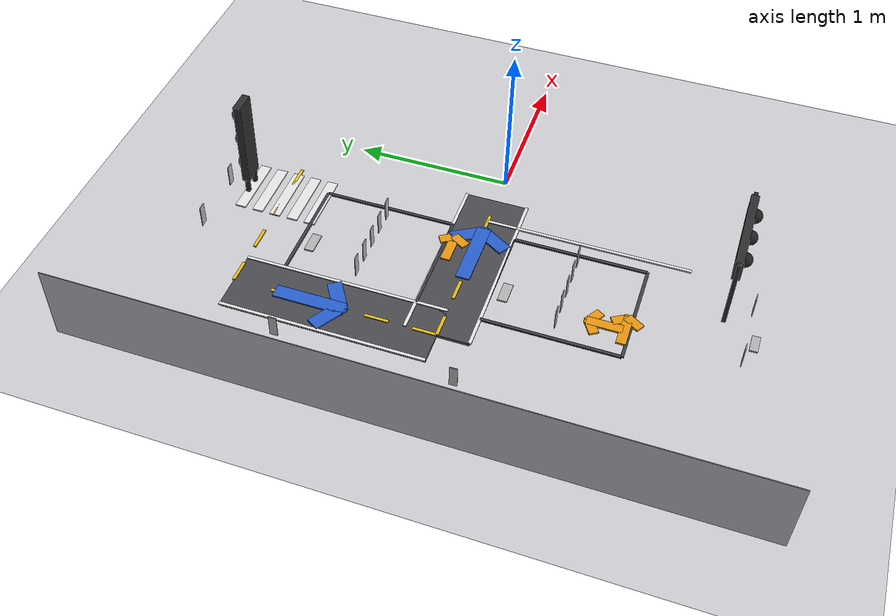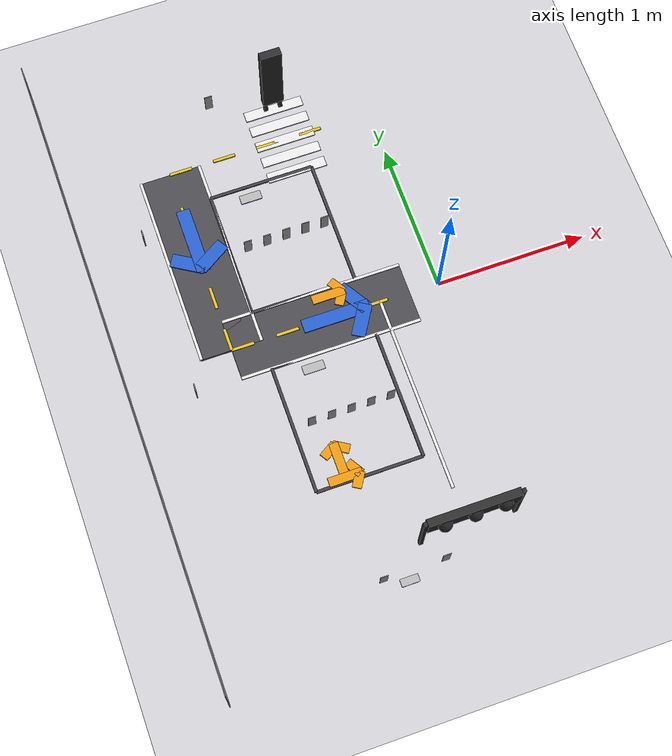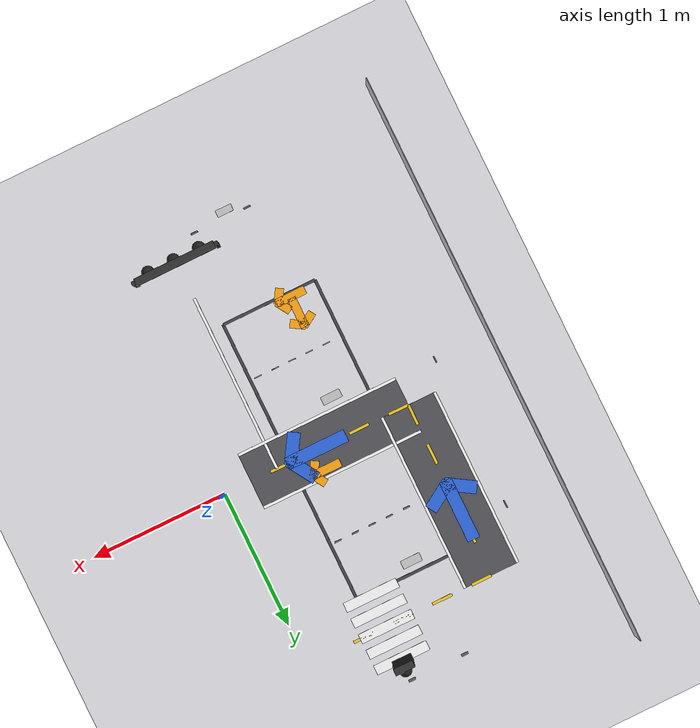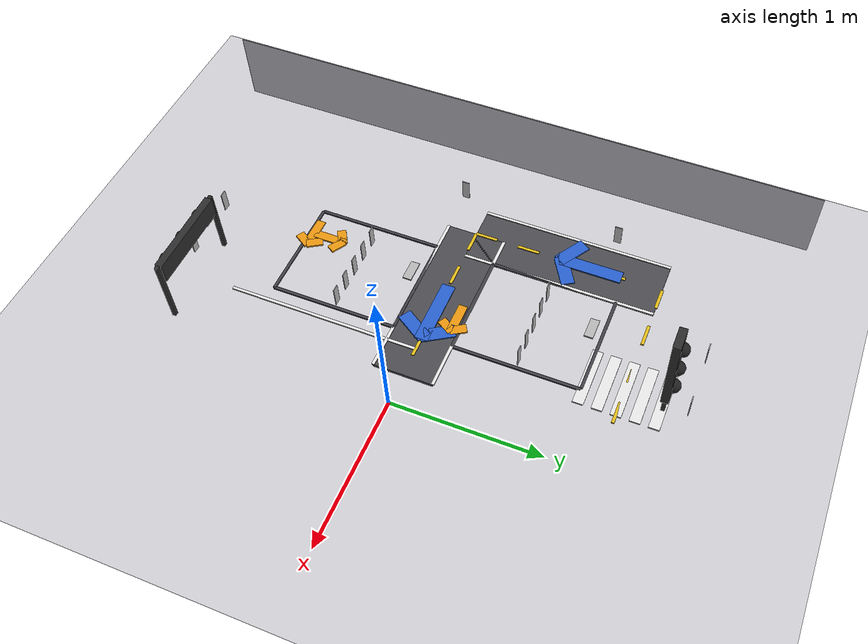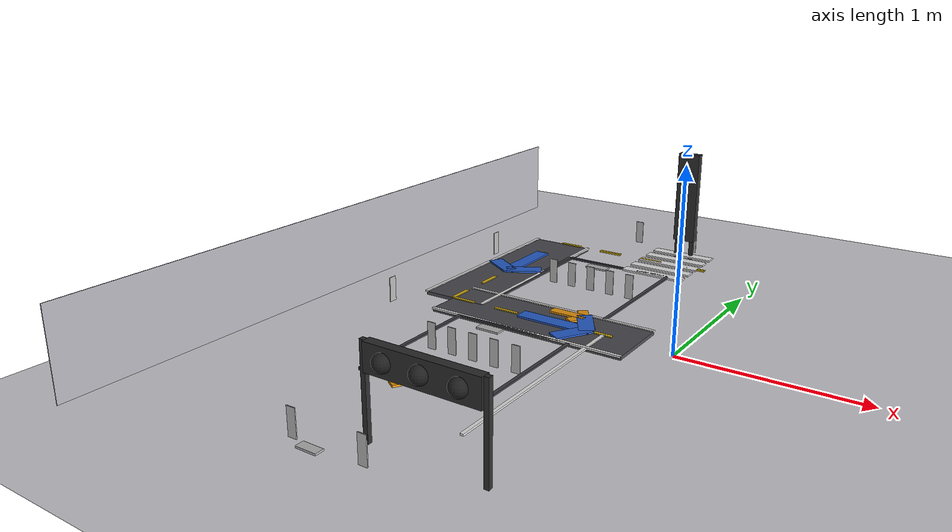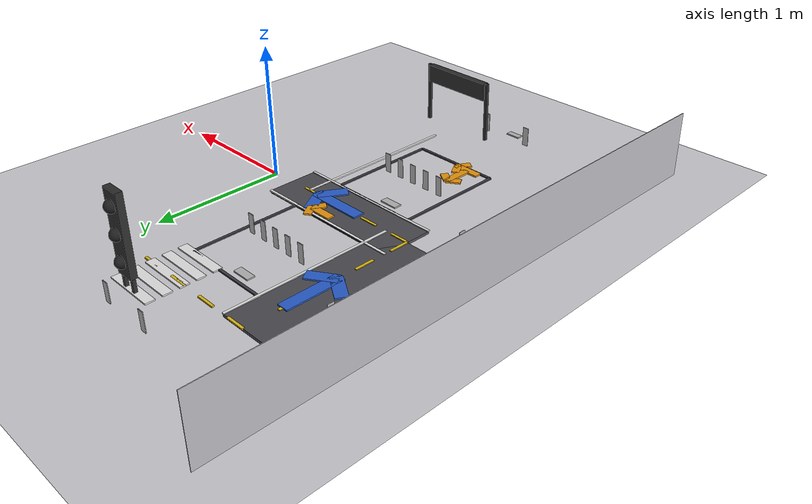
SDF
<sdf version="1.8">
 <world name="smart_community">
  <model name="ground_plane">
   <static>true</static>
   <link name="link">
    <collision name="collision">
     <geometry><plane><normal>0 0 1</normal><size>6 6</size></plane></geometry>
     <surface><friction><ode><mu>1.0</mu><mu2>1.0</mu2></ode></friction></surface>
    </collision>
    <visual name="visual">
     <geometry><plane><normal>0 0 1</normal><size>6 6</size></plane></geometry>
     <material>
      <ambient>0.72 0.72 0.74 1</ambient>
      <diffuse>0.82 0.82 0.84 1</diffuse>
      <specular>0.05 0.05 0.05 1</specular>
     </material>
    </visual>
   </link>
  </model>
  <model name="wall_w">
   <static>true</static>
   <pose>-2.1025 0 0.25 0 0 0.0</pose>
   <link name="link">
    <collision name="c"><geometry><box><size>0.005 4.205 0.5</size></box></geometry></collision>
    <visual name="v">
     <geometry><box><size>0.005 4.205 0.5</size></box></geometry>
     <material><ambient>0.55 0.55 0.58 1</ambient><diffuse>0.72 0.72 0.75 1</diffuse></material>
    </visual>
   </link>
  </model>
  <model name="road_top_dash_0">
   <static>true</static>
   <pose>-1.325 1.3 0.021 0 0 0.0</pose>
   <link name="link">
    <visual name="visual">
     <geometry><box><size>0.15 0.02 0.01</size></box></geometry>
     <material><ambient>0.81 0.675 0.09000000000000001 1</ambient><diffuse>0.9 0.75 0.1 1</diffuse></material>
    </visual>
   </link>
  </model>
  <model name="road_top_dash_1">
   <static>true</static>
   <pose>-1.025 1.3 0.021 0 0 0.0</pose>
   <link name="link">
    <visual name="visual">
     <geometry><box><size>0.15 0.02 0.01</size></box></geometry>
     <material><ambient>0.81 0.675 0.09000000000000001 1</ambient><diffuse>0.9 0.75 0.1 1</diffuse></material>
    </visual>
   </link>
  </model>
  <model name="road_top_dash_2">
   <static>true</static>
   <pose>-0.7249999999999999 1.3 0.021 0 0 0.0</pose>
   <link name="link">
    <visual name="visual">
     <geometry><box><size>0.15 0.02 0.01</size></box></geometry>
     <material><ambient>0.81 0.675 0.09000000000000001 1</ambient><diffuse>0.9 0.75 0.1 1</diffuse></material>
    </visual>
   </link>
  </model>
  <model name="road_top_dash_3">
   <static>true</static>
   <pose>-0.4249999999999998 1.3 0.021 0 0 0.0</pose>
   <link name="link">
    <visual name="visual">
     <geometry><box><size>0.15 0.02 0.01</size></box></geometry>
     <material><ambient>0.81 0.675 0.09000000000000001 1</ambient><diffuse>0.9 0.75 0.1 1</diffuse></material>
    </visual>
   </link>
  </model>
  <model name="road_left">
   <static>true</static>
   <pose>-1.4 0.65 0.01 0 0 0.0</pose>
   <link name="link">
    <visual name="v">
     <geometry><box><size>0.4 1.3 0.02</size></box></geometry>
     <material><ambient>0.3 0.3 0.32 1</ambient><diffuse>0.3 0.3 0.32 1</diffuse></material>
    </visual>
   </link>
  </model>
  <model name="road_left_edge_e">
   <static>true</static>
   <pose>-1.2 0.65 0.021 0 0 0.0</pose>
   <link name="link">
    <visual name="visual">
     <geometry><box><size>0.02 1.3 0.01</size></box></geometry>
     <material>
      <ambient>0.8280000000000001 0.8280000000000001 0.8280000000000001 1</ambient>
      <diffuse>0.92 0.92 0.92 1</diffuse>
     </material>
    </visual>
   </link>
  </model>
  <model name="road_left_edge_w">
   <static>true</static>
   <pose>-1.5999999999999999 0.65 0.021 0 0 0.0</pose>
   <link name="link">
    <visual name="visual">
     <geometry><box><size>0.02 1.3 0.01</size></box></geometry>
     <material>
      <ambient>0.8280000000000001 0.8280000000000001 0.8280000000000001 1</ambient>
      <diffuse>0.92 0.92 0.92 1</diffuse>
     </material>
    </visual>
   </link>
  </model>
  <model name="road_left_dash_0">
   <static>true</static>
   <pose>-1.4 0.075 0.021 0 0 0.0</pose>
   <link name="link">
    <visual name="visual">
     <geometry><box><size>0.02 0.15 0.01</size></box></geometry>
     <material><ambient>0.81 0.675 0.09000000000000001 1</ambient><diffuse>0.9 0.75 0.1 1</diffuse></material>
    </visual>
   </link>
  </model>
  <model name="road_left_dash_1">
   <static>true</static>
   <pose>-1.4 0.375 0.021 0 0 0.0</pose>
   <link name="link">
    <visual name="visual">
     <geometry><box><size>0.02 0.15 0.01</size></box></geometry>
     <material><ambient>0.81 0.675 0.09000000000000001 1</ambient><diffuse>0.9 0.75 0.1 1</diffuse></material>
    </visual>
   </link>
  </model>
  <model name="road_left_dash_2">
   <static>true</static>
   <pose>-1.4 0.6749999999999999 0.021 0 0 0.0</pose>
   <link name="link">
    <visual name="visual">
     <geometry><box><size>0.02 0.15 0.01</size></box></geometry>
     <material><ambient>0.81 0.675 0.09000000000000001 1</ambient><diffuse>0.9 0.75 0.1 1</diffuse></material>
    </visual>
   </link>
  </model>
  <model name="road_left_dash_3">
   <static>true</static>
   <pose>-1.4 0.9749999999999999 0.021 0 0 0.0</pose>
   <link name="link">
    <visual name="visual">
     <geometry><box><size>0.02 0.15 0.01</size></box></geometry>
     <material><ambient>0.81 0.675 0.09000000000000001 1</ambient><diffuse>0.9 0.75 0.1 1</diffuse></material>
    </visual>
   </link>
  </model>
  <model name="road_mid">
   <static>true</static>
   <pose>-0.7999999999999999 0.0 0.01 0 0 0.0</pose>
   <link name="link">
    <visual name="v">
     <geometry><box><size>1.2 0.4 0.02</size></box></geometry>
     <material><ambient>0.3 0.3 0.32 1</ambient><diffuse>0.3 0.3 0.32 1</diffuse></material>
    </visual>
   </link>
  </model>
  <model name="road_mid_edge_n">
   <static>true</static>
   <pose>-0.7999999999999999 0.2 0.021 0 0 0.0</pose>
   <link name="link">
    <visual name="visual">
     <geometry><box><size>1.2 0.02 0.01</size></box></geometry>
     <material>
      <ambient>0.8280000000000001 0.8280000000000001 0.8280000000000001 1</ambient>
      <diffuse>0.92 0.92 0.92 1</diffuse>
     </material>
    </visual>
   </link>
  </model>
  <model name="road_mid_edge_s">
   <static>true</static>
   <pose>-0.7999999999999999 -0.2 0.021 0 0 0.0</pose>
   <link name="link">
    <visual name="visual">
     <geometry><box><size>1.2 0.02 0.01</size></box></geometry>
     <material>
      <ambient>0.8280000000000001 0.8280000000000001 0.8280000000000001 1</ambient>
      <diffuse>0.92 0.92 0.92 1</diffuse>
     </material>
    </visual>
   </link>
  </model>
  <model name="road_mid_dash_0">
   <static>true</static>
   <pose>-1.325 0.0 0.021 0 0 0.0</pose>
   <link name="link">
    <visual name="visual">
     <geometry><box><size>0.15 0.02 0.01</size></box></geometry>
     <material><ambient>0.81 0.675 0.09000000000000001 1</ambient><diffuse>0.9 0.75 0.1 1</diffuse></material>
    </visual>
   </link>
  </model>
  <model name="road_mid_dash_1">
   <static>true</static>
   <pose>-1.025 0.0 0.021 0 0 0.0</pose>
   <link name="link">
    <visual name="visual">
     <geometry><box><size>0.15 0.02 0.01</size></box></geometry>
     <material><ambient>0.81 0.675 0.09000000000000001 1</ambient><diffuse>0.9 0.75 0.1 1</diffuse></material>
    </visual>
   </link>
  </model>
  <model name="road_mid_dash_2">
   <static>true</static>
   <pose>-0.7249999999999999 0.0 0.021 0 0 0.0</pose>
   <link name="link">
    <visual name="visual">
     <geometry><box><size>0.15 0.02 0.01</size></box></geometry>
     <material><ambient>0.81 0.675 0.09000000000000001 1</ambient><diffuse>0.9 0.75 0.1 1</diffuse></material>
    </visual>
   </link>
  </model>
  <model name="road_mid_dash_3">
   <static>true</static>
   <pose>-0.4249999999999998 0.0 0.021 0 0 0.0</pose>
   <link name="link">
    <visual name="visual">
     <geometry><box><size>0.15 0.02 0.01</size></box></geometry>
     <material><ambient>0.81 0.675 0.09000000000000001 1</ambient><diffuse>0.9 0.75 0.1 1</diffuse></material>
    </visual>
   </link>
  </model>
  <model name="road_central_edge_w">
   <static>true</static>
   <pose>-0.4 -0.65 0.021 0 0 0.0</pose>
   <link name="link">
    <visual name="visual">
     <geometry><box><size>0.02 1.3 0.01</size></box></geometry>
     <material>
      <ambient>0.8280000000000001 0.8280000000000001 0.8280000000000001 1</ambient>
      <diffuse>0.92 0.92 0.92 1</diffuse>
     </material>
    </visual>
   </link>
  </model>
  <model name="arrow_left">
   <static>true</static>
   <pose>-1.4 0.8 0.024 0 0 -1.5707963267948966</pose>
   <link name="link">
    <visual name="shaft">
     <geometry><box><size>0.45 0.09 0.012</size></box></geometry>
     <material><ambient>0.136 0.323 0.697 1</ambient><diffuse>0.16 0.38 0.82 1</diffuse></material>
    </visual>
    <visual name="head1">
     <pose>0.1454625 -0.0795375 0 0 0 45</pose>
     <geometry><box><size>0.225 0.09 0.012</size></box></geometry>
     <material><ambient>0.136 0.323 0.697 1</ambient><diffuse>0.16 0.38 0.82 1</diffuse></material>
    </visual>
    <visual name="head2">
     <pose>0.1454625 0.0795375 0 0 0 -45</pose>
     <geometry><box><size>0.225 0.09 0.012</size></box></geometry>
     <material><ambient>0.136 0.323 0.697 1</ambient><diffuse>0.16 0.38 0.82 1</diffuse></material>
    </visual>
   </link>
  </model>
  <model name="arrow_mid">
   <static>true</static>
   <pose>-0.7 0.0 0.024 0 0 0.0</pose>
   <link name="link">
    <visual name="shaft">
     <geometry><box><size>0.45 0.09 0.012</size></box></geometry>
     <material><ambient>0.136 0.323 0.697 1</ambient><diffuse>0.16 0.38 0.82 1</diffuse></material>
    </visual>
    <visual name="head1">
     <pose>0.1454625 -0.0795375 0 0 0 45</pose>
     <geometry><box><size>0.225 0.09 0.012</size></box></geometry>
     <material><ambient>0.136 0.323 0.697 1</ambient><diffuse>0.16 0.38 0.82 1</diffuse></material>
    </visual>
    <visual name="head2">
     <pose>0.1454625 0.0795375 0 0 0 -45</pose>
     <geometry><box><size>0.225 0.09 0.012</size></box></geometry>
     <material><ambient>0.136 0.323 0.697 1</ambient><diffuse>0.16 0.38 0.82 1</diffuse></material>
    </visual>
   </link>
  </model>
  <model name="traffic_light_1">
   <static>true</static>
   <pose>-0.6 1.55 0 0 0 0.0</pose>
   <link name="link">
    <visual name="leg_l">
     <pose>-0.05 0 0.15 0 0 0</pose>
     <geometry><box><size>0.025 0.025 0.3</size></box></geometry>
     <material><ambient>0.1 0.1 0.1 1</ambient><diffuse>0.18 0.18 0.18 1</diffuse></material>
    </visual>
    <visual name="leg_r">
     <pose>0.05 0 0.15 0 0 0</pose>
     <geometry><box><size>0.025 0.025 0.3</size></box></geometry>
     <material><ambient>0.1 0.1 0.1 1</ambient><diffuse>0.18 0.18 0.18 1</diffuse></material>
    </visual>
    <visual name="housing">
     <pose>0 0 0.42 0 0 0</pose>
     <geometry><box><size>0.14 0.05 0.59</size></box></geometry>
     <material><ambient>0.1 0.1 0.1 1</ambient><diffuse>0.18 0.18 0.18 1</diffuse></material>
    </visual>
    <visual name="red">
     <pose>0 0.026 0.61 0 0 0</pose>
     <geometry><sphere><radius>0.045</radius></sphere></geometry>
     <material><emissive>0.05 0.05 0.05 1.0</emissive><diffuse>0.12 0.12 0.12 1</diffuse></material>
    </visual>
    <visual name="yellow">
     <pose>0 0.026 0.42 0 0 0</pose>
     <geometry><sphere><radius>0.045</radius></sphere></geometry>
     <material><emissive>0.05 0.05 0.05 1.0</emissive><diffuse>0.12 0.12 0.12 1</diffuse></material>
    </visual>
    <visual name="green">
     <pose>0 0.026 0.22999999999999998 0 0 0</pose>
     <geometry><sphere><radius>0.045</radius></sphere></geometry>
     <material><emissive>0.05 0.05 0.05 1.0</emissive><diffuse>0.12 0.12 0.12 1</diffuse></material>
    </visual>
   </link>
  </model>
  <model name="zebra_top_0">
   <static>true</static>
   <pose>-0.6 1.062 0.021 0 0 0.0</pose>
   <link name="link">
    <visual name="visual">
     <geometry><box><size>0.4 0.07 0.01</size></box></geometry>
     <material>
      <ambient>0.8280000000000001 0.8280000000000001 0.8280000000000001 1</ambient>
      <diffuse>0.92 0.92 0.92 1</diffuse>
     </material>
    </visual>
   </link>
  </model>
  <model name="zebra_top_1">
   <static>true</static>
   <pose>-0.6 1.181 0.021 0 0 0.0</pose>
   <link name="link">
    <visual name="visual">
     <geometry><box><size>0.4 0.07 0.01</size></box></geometry>
     <material>
      <ambient>0.8280000000000001 0.8280000000000001 0.8280000000000001 1</ambient>
      <diffuse>0.92 0.92 0.92 1</diffuse>
     </material>
    </visual>
   </link>
  </model>
  <model name="zebra_top_2">
   <static>true</static>
   <pose>-0.6 1.3 0.021 0 0 0.0</pose>
   <link name="link">
    <visual name="visual">
     <geometry><box><size>0.4 0.07 0.01</size></box></geometry>
     <material>
      <ambient>0.8280000000000001 0.8280000000000001 0.8280000000000001 1</ambient>
      <diffuse>0.92 0.92 0.92 1</diffuse>
     </material>
    </visual>
   </link>
  </model>
  <model name="zebra_top_3">
   <static>true</static>
   <pose>-0.6 1.419 0.021 0 0 0.0</pose>
   <link name="link">
    <visual name="visual">
     <geometry><box><size>0.4 0.07 0.01</size></box></geometry>
     <material>
      <ambient>0.8280000000000001 0.8280000000000001 0.8280000000000001 1</ambient>
      <diffuse>0.92 0.92 0.92 1</diffuse>
     </material>
    </visual>
   </link>
  </model>
  <model name="zebra_top_4">
   <static>true</static>
   <pose>-0.6 1.538 0.021 0 0 0.0</pose>
   <link name="link">
    <visual name="visual">
     <geometry><box><size>0.4 0.07 0.01</size></box></geometry>
     <material>
      <ambient>0.8280000000000001 0.8280000000000001 0.8280000000000001 1</ambient>
      <diffuse>0.92 0.92 0.92 1</diffuse>
     </material>
    </visual>
   </link>
  </model>
  <model name="traffic_light_2">
   <static>true</static>
   <pose>-0.4 -1.55 0 0 0 3.141592653589793</pose>
   <link name="link">
    <visual name="leg_l">
     <pose>-0.3075 0 0.24 0 0 0</pose>
     <geometry><box><size>0.025 0.025 0.48</size></box></geometry>
     <material><ambient>0.1 0.1 0.1 1</ambient><diffuse>0.18 0.18 0.18 1</diffuse></material>
    </visual>
    <visual name="leg_r">
     <pose>0.3075 0 0.24 0 0 0</pose>
     <geometry><box><size>0.025 0.025 0.48</size></box></geometry>
     <material><ambient>0.1 0.1 0.1 1</ambient><diffuse>0.18 0.18 0.18 1</diffuse></material>
    </visual>
    <visual name="housing">
     <pose>0 0 0.41 0 0 0</pose>
     <geometry><box><size>0.59 0.05 0.14</size></box></geometry>
     <material><ambient>0.1 0.1 0.1 1</ambient><diffuse>0.18 0.18 0.18 1</diffuse></material>
    </visual>
    <visual name="green">
     <pose>-0.19 0.026 0.41 0 0 0</pose>
     <geometry><sphere><radius>0.045</radius></sphere></geometry>
     <material><emissive>0.05 0.05 0.05 1.0</emissive><diffuse>0.12 0.12 0.12 1</diffuse></material>
    </visual>
    <visual name="yellow">
     <pose>0.0 0.026 0.41 0 0 0</pose>
     <geometry><sphere><radius>0.045</radius></sphere></geometry>
     <material><emissive>0.05 0.05 0.05 1.0</emissive><diffuse>0.12 0.12 0.12 1</diffuse></material>
    </visual>
    <visual name="red">
     <pose>0.19 0.026 0.41 0 0 0</pose>
     <geometry><sphere><radius>0.045</radius></sphere></geometry>
     <material><emissive>0.05 0.05 0.05 1.0</emissive><diffuse>0.12 0.12 0.12 1</diffuse></material>
    </visual>
   </link>
  </model>
  <model name="zone_a_n">
   <static>true</static>
   <pose>-0.85 1.05 0.021 0 0 0.0</pose>
   <link name="link">
    <visual name="visual">
     <geometry><box><size>0.7 0.02 0.01</size></box></geometry>
     <material><ambient>0.225 0.225 0.25200000000000006 1</ambient><diffuse>0.25 0.25 0.28 1</diffuse></material>
    </visual>
   </link>
  </model>
  <model name="zone_a_s">
   <static>true</static>
   <pose>-0.85 0.2 0.021 0 0 0.0</pose>
   <link name="link">
    <visual name="visual">
     <geometry><box><size>0.7 0.02 0.01</size></box></geometry>
     <material><ambient>0.225 0.225 0.25200000000000006 1</ambient><diffuse>0.25 0.25 0.28 1</diffuse></material>
    </visual>
   </link>
  </model>
  <model name="zone_a_w">
   <static>true</static>
   <pose>-1.2 0.625 0.021 0 0 0.0</pose>
   <link name="link">
    <visual name="visual">
     <geometry><box><size>0.02 0.8500000000000001 0.01</size></box></geometry>
     <material><ambient>0.225 0.225 0.25200000000000006 1</ambient><diffuse>0.25 0.25 0.28 1</diffuse></material>
    </visual>
   </link>
  </model>
  <model name="zone_a_e">
   <static>true</static>
   <pose>-0.5 0.625 0.021 0 0 0.0</pose>
   <link name="link">
    <visual name="visual">
     <geometry><box><size>0.02 0.8500000000000001 0.01</size></box></geometry>
     <material><ambient>0.225 0.225 0.25200000000000006 1</ambient><diffuse>0.25 0.25 0.28 1</diffuse></material>
    </visual>
   </link>
  </model>
  <model name="label_a">
   <static>true</static>
   <pose>-0.95 0.9700000000000001 0.023 0 0 0.0</pose>
   <link name="link">
    <visual name="visual">
     <geometry><box><size>0.1425 0.06 0.01</size></box></geometry>
     <material>
      <pbr>
       <metal>
        <albedo_map>model://smart_community_sim/textures/label_a.png</albedo_map>
        <metalness>0.0</metalness>
        <roughness>1.0</roughness>
       </metal>
      </pbr>
     </material>
    </visual>
   </link>
  </model>
  <model name="person_a1">
   <static>true</static>
   <pose>-1.08 0.625 0.075 0 0 0.0</pose>
   <link name="link">
    <collision name="collision"><geometry><box><size>0.05 0.005 0.15</size></box></geometry></collision>
    <visual name="visual">
     <geometry><box><size>0.05 0.005 0.15</size></box></geometry>
     <material>
      <pbr>
       <metal>
        <albedo_map>model://smart_community_sim/textures/person_community_04.png</albedo_map>
        <metalness>0.0</metalness>
        <roughness>1.0</roughness>
       </metal>
      </pbr>
     </material>
    </visual>
   </link>
  </model>
  <model name="person_a2">
   <static>true</static>
   <pose>-0.9500000000000001 0.625 0.075 0 0 0.0</pose>
   <link name="link">
    <collision name="collision"><geometry><box><size>0.05 0.005 0.15</size></box></geometry></collision>
    <visual name="visual">
     <geometry><box><size>0.05 0.005 0.15</size></box></geometry>
     <material>
      <pbr>
       <metal>
        <albedo_map>model://smart_community_sim/textures/person_community_02.png</albedo_map>
        <metalness>0.0</metalness>
        <roughness>1.0</roughness>
       </metal>
      </pbr>
     </material>
    </visual>
   </link>
  </model>
  <model name="person_a3">
   <static>true</static>
   <pose>-0.8200000000000001 0.625 0.075 0 0 0.0</pose>
   <link name="link">
    <collision name="collision"><geometry><box><size>0.05 0.005 0.15</size></box></geometry></collision>
    <visual name="visual">
     <geometry><box><size>0.05 0.005 0.15</size></box></geometry>
     <material>
      <pbr>
       <metal>
        <albedo_map>model://smart_community_sim/textures/person_community_03.png</albedo_map>
        <metalness>0.0</metalness>
        <roughness>1.0</roughness>
       </metal>
      </pbr>
     </material>
    </visual>
   </link>
  </model>
  <model name="person_a4">
   <static>true</static>
   <pose>-0.6900000000000001 0.625 0.075 0 0 0.0</pose>
   <link name="link">
    <collision name="collision"><geometry><box><size>0.05 0.005 0.15</size></box></geometry></collision>
    <visual name="visual">
     <geometry><box><size>0.05 0.005 0.15</size></box></geometry>
     <material>
      <pbr>
       <metal>
        <albedo_map>model://smart_community_sim/textures/person_community_12.png</albedo_map>
        <metalness>0.0</metalness>
        <roughness>1.0</roughness>
       </metal>
      </pbr>
     </material>
    </visual>
   </link>
  </model>
  <model name="person_a5">
   <static>true</static>
   <pose>-0.56 0.625 0.075 0 0 0.0</pose>
   <link name="link">
    <collision name="collision"><geometry><box><size>0.05 0.005 0.15</size></box></geometry></collision>
    <visual name="visual">
     <geometry><box><size>0.05 0.005 0.15</size></box></geometry>
     <material>
      <pbr>
       <metal>
        <albedo_map>model://smart_community_sim/textures/person_community_11.png</albedo_map>
        <metalness>0.0</metalness>
        <roughness>1.0</roughness>
       </metal>
      </pbr>
     </material>
    </visual>
   </link>
  </model>
  <model name="arrow_a">
   <static>true</static>
   <pose>-0.7 0.15000000000000002 0.024 0 0 0.0</pose>
   <link name="link">
    <visual name="shaft">
     <geometry><box><size>0.22 0.06 0.012</size></box></geometry>
     <material><ambient>0.7905 0.51 0.051 1</ambient><diffuse>0.93 0.6 0.06 1</diffuse></material>
    </visual>
    <visual name="head1">
     <pose>0.07111500000000001 -0.038884999999999996 0 0 0 45</pose>
     <geometry><box><size>0.11 0.06 0.012</size></box></geometry>
     <material><ambient>0.7905 0.51 0.051 1</ambient><diffuse>0.93 0.6 0.06 1</diffuse></material>
    </visual>
    <visual name="head2">
     <pose>0.07111500000000001 0.038884999999999996 0 0 0 -45</pose>
     <geometry><box><size>0.11 0.06 0.012</size></box></geometry>
     <material><ambient>0.7905 0.51 0.051 1</ambient><diffuse>0.93 0.6 0.06 1</diffuse></material>
    </visual>
   </link>
  </model>
  <model name="zone_b_n">
   <static>true</static>
   <pose>-0.85 -0.2 0.021 0 0 0.0</pose>
   <link name="link">
    <visual name="visual">
     <geometry><box><size>0.7 0.02 0.01</size></box></geometry>
     <material><ambient>0.225 0.225 0.25200000000000006 1</ambient><diffuse>0.25 0.25 0.28 1</diffuse></material>
    </visual>
   </link>
  </model>
  <model name="zone_b_s">
   <static>true</static>
   <pose>-0.85 -1.05 0.021 0 0 0.0</pose>
   <link name="link">
    <visual name="visual">
     <geometry><box><size>0.7 0.02 0.01</size></box></geometry>
     <material><ambient>0.225 0.225 0.25200000000000006 1</ambient><diffuse>0.25 0.25 0.28 1</diffuse></material>
    </visual>
   </link>
  </model>
  <model name="zone_b_w">
   <static>true</static>
   <pose>-1.2 -0.625 0.021 0 0 0.0</pose>
   <link name="link">
    <visual name="visual">
     <geometry><box><size>0.02 0.8500000000000001 0.01</size></box></geometry>
     <material><ambient>0.225 0.225 0.25200000000000006 1</ambient><diffuse>0.25 0.25 0.28 1</diffuse></material>
    </visual>
   </link>
  </model>
  <model name="zone_b_e">
   <static>true</static>
   <pose>-0.5 -0.625 0.021 0 0 0.0</pose>
   <link name="link">
    <visual name="visual">
     <geometry><box><size>0.02 0.8500000000000001 0.01</size></box></geometry>
     <material><ambient>0.225 0.225 0.25200000000000006 1</ambient><diffuse>0.25 0.25 0.28 1</diffuse></material>
    </visual>
   </link>
  </model>
  <model name="label_b">
   <static>true</static>
   <pose>-0.95 -0.28 0.023 0 0 0.0</pose>
   <link name="link">
    <visual name="visual">
     <geometry><box><size>0.1425 0.06 0.01</size></box></geometry>
     <material>
      <pbr>
       <metal>
        <albedo_map>model://smart_community_sim/textures/label_b.png</albedo_map>
        <metalness>0.0</metalness>
        <roughness>1.0</roughness>
       </metal>
      </pbr>
     </material>
    </visual>
   </link>
  </model>
  <model name="person_b1">
   <static>true</static>
   <pose>-1.08 -0.625 0.075 0 0 0.0</pose>
   <link name="link">
    <collision name="collision"><geometry><box><size>0.05 0.005 0.15</size></box></geometry></collision>
    <visual name="visual">
     <geometry><box><size>0.05 0.005 0.15</size></box></geometry>
     <material>
      <pbr>
       <metal>
        <albedo_map>model://smart_community_sim/textures/person_community_07.png</albedo_map>
        <metalness>0.0</metalness>
        <roughness>1.0</roughness>
       </metal>
      </pbr>
     </material>
    </visual>
   </link>
  </model>
  <model name="person_b2">
   <static>true</static>
   <pose>-0.9500000000000001 -0.625 0.075 0 0 0.0</pose>
   <link name="link">
    <collision name="collision"><geometry><box><size>0.05 0.005 0.15</size></box></geometry></collision>
    <visual name="visual">
     <geometry><box><size>0.05 0.005 0.15</size></box></geometry>
     <material>
      <pbr>
       <metal>
        <albedo_map>model://smart_community_sim/textures/person_community_09.png</albedo_map>
        <metalness>0.0</metalness>
        <roughness>1.0</roughness>
       </metal>
      </pbr>
     </material>
    </visual>
   </link>
  </model>
  <model name="person_b3">
   <static>true</static>
   <pose>-0.8200000000000001 -0.625 0.075 0 0 0.0</pose>
   <link name="link">
    <collision name="collision"><geometry><box><size>0.05 0.005 0.15</size></box></geometry></collision>
    <visual name="visual">
     <geometry><box><size>0.05 0.005 0.15</size></box></geometry>
     <material>
      <pbr>
       <metal>
        <albedo_map>model://smart_community_sim/textures/person_community_01.png</albedo_map>
        <metalness>0.0</metalness>
        <roughness>1.0</roughness>
       </metal>
      </pbr>
     </material>
    </visual>
   </link>
  </model>
  <model name="person_b4">
   <static>true</static>
   <pose>-0.6900000000000001 -0.625 0.075 0 0 0.0</pose>
   <link name="link">
    <collision name="collision"><geometry><box><size>0.05 0.005 0.15</size></box></geometry></collision>
    <visual name="visual">
     <geometry><box><size>0.05 0.005 0.15</size></box></geometry>
     <material>
      <pbr>
       <metal>
        <albedo_map>model://smart_community_sim/textures/person_community_08.png</albedo_map>
        <metalness>0.0</metalness>
        <roughness>1.0</roughness>
       </metal>
      </pbr>
     </material>
    </visual>
   </link>
  </model>
  <model name="person_b5">
   <static>true</static>
   <pose>-0.56 -0.625 0.075 0 0 0.0</pose>
   <link name="link">
    <collision name="collision"><geometry><box><size>0.05 0.005 0.15</size></box></geometry></collision>
    <visual name="visual">
     <geometry><box><size>0.05 0.005 0.15</size></box></geometry>
     <material>
      <pbr>
       <metal>
        <albedo_map>model://smart_community_sim/textures/person_community_15.png</albedo_map>
        <metalness>0.0</metalness>
        <roughness>1.0</roughness>
       </metal>
      </pbr>
     </material>
    </visual>
   </link>
  </model>
  <model name="arrow_b_up">
   <static>true</static>
   <pose>-1.0 -0.9 0.024 0 0 1.5707963267948966</pose>
   <link name="link">
    <visual name="shaft">
     <geometry><box><size>0.22 0.06 0.012</size></box></geometry>
     <material><ambient>0.7905 0.51 0.051 1</ambient><diffuse>0.93 0.6 0.06 1</diffuse></material>
    </visual>
    <visual name="head1">
     <pose>0.07111500000000001 -0.038884999999999996 0 0 0 45</pose>
     <geometry><box><size>0.11 0.06 0.012</size></box></geometry>
     <material><ambient>0.7905 0.51 0.051 1</ambient><diffuse>0.93 0.6 0.06 1</diffuse></material>
    </visual>
    <visual name="head2">
     <pose>0.07111500000000001 0.038884999999999996 0 0 0 -45</pose>
     <geometry><box><size>0.11 0.06 0.012</size></box></geometry>
     <material><ambient>0.7905 0.51 0.051 1</ambient><diffuse>0.93 0.6 0.06 1</diffuse></material>
    </visual>
   </link>
  </model>
  <model name="arrow_b_right">
   <static>true</static>
   <pose>-1.0 -1.02 0.024 0 0 0.0</pose>
   <link name="link">
    <visual name="shaft">
     <geometry><box><size>0.22 0.06 0.012</size></box></geometry>
     <material><ambient>0.7905 0.51 0.051 1</ambient><diffuse>0.93 0.6 0.06 1</diffuse></material>
    </visual>
    <visual name="head1">
     <pose>0.07111500000000001 -0.038884999999999996 0 0 0 45</pose>
     <geometry><box><size>0.11 0.06 0.012</size></box></geometry>
     <material><ambient>0.7905 0.51 0.051 1</ambient><diffuse>0.93 0.6 0.06 1</diffuse></material>
    </visual>
    <visual name="head2">
     <pose>0.07111500000000001 0.038884999999999996 0 0 0 -45</pose>
     <geometry><box><size>0.11 0.06 0.012</size></box></geometry>
     <material><ambient>0.7905 0.51 0.051 1</ambient><diffuse>0.93 0.6 0.06 1</diffuse></material>
    </visual>
   </link>
  </model>
  <model name="person_s1">
   <static>true</static>
   <pose>-0.6 1.7 0.075 0 0 3.141592653589793</pose>
   <link name="link">
    <collision name="collision"><geometry><box><size>0.05 0.005 0.15</size></box></geometry></collision>
    <visual name="visual">
     <geometry><box><size>0.05 0.005 0.15</size></box></geometry>
     <material>
      <pbr>
       <metal>
        <albedo_map>model://smart_community_sim/textures/person_community_05.png</albedo_map>
        <metalness>0.0</metalness>
        <roughness>1.0</roughness>
       </metal>
      </pbr>
     </material>
    </visual>
   </link>
  </model>
  <model name="person_s2">
   <static>true</static>
   <pose>-1.0 1.7 0.075 0 0 3.141592653589793</pose>
   <link name="link">
    <collision name="collision"><geometry><box><size>0.05 0.005 0.15</size></box></geometry></collision>
    <visual name="visual">
     <geometry><box><size>0.05 0.005 0.15</size></box></geometry>
     <material>
      <pbr>
       <metal>
        <albedo_map>model://smart_community_sim/textures/person_community_06.png</albedo_map>
        <metalness>0.0</metalness>
        <roughness>1.0</roughness>
       </metal>
      </pbr>
     </material>
    </visual>
   </link>
  </model>
  <model name="person_s3">
   <static>true</static>
   <pose>-1.7 0.9 0.075 0 0 1.5707963267948966</pose>
   <link name="link">
    <collision name="collision"><geometry><box><size>0.05 0.005 0.15</size></box></geometry></collision>
    <visual name="visual">
     <geometry><box><size>0.05 0.005 0.15</size></box></geometry>
     <material>
      <pbr>
       <metal>
        <albedo_map>model://smart_community_sim/textures/person_community_10.png</albedo_map>
        <metalness>0.0</metalness>
        <roughness>1.0</roughness>
       </metal>
      </pbr>
     </material>
    </visual>
   </link>
  </model>
  <model name="person_s4">
   <static>true</static>
   <pose>-1.7 -0.2 0.075 0 0 1.5707963267948966</pose>
   <link name="link">
    <collision name="collision"><geometry><box><size>0.05 0.005 0.15</size></box></geometry></collision>
    <visual name="visual">
     <geometry><box><size>0.05 0.005 0.15</size></box></geometry>
     <material>
      <pbr>
       <metal>
        <albedo_map>model://smart_community_sim/textures/person_community_13.png</albedo_map>
        <metalness>0.0</metalness>
        <roughness>1.0</roughness>
       </metal>
      </pbr>
     </material>
    </visual>
   </link>
  </model>
  <model name="person_s5">
   <static>true</static>
   <pose>-0.6 -1.7 0.075 0 0 0.0</pose>
   <link name="link">
    <collision name="collision"><geometry><box><size>0.05 0.005 0.15</size></box></geometry></collision>
    <visual name="visual">
     <geometry><box><size>0.05 0.005 0.15</size></box></geometry>
     <material>
      <pbr>
       <metal>
        <albedo_map>model://smart_community_sim/textures/person_community_14.png</albedo_map>
        <metalness>0.0</metalness>
        <roughness>1.0</roughness>
       </metal>
      </pbr>
     </material>
    </visual>
   </link>
  </model>
  <model name="person_s6">
   <static>true</static>
   <pose>-1.0 -1.7 0.075 0 0 0.0</pose>
   <link name="link">
    <collision name="collision"><geometry><box><size>0.05 0.005 0.15</size></box></geometry></collision>
    <visual name="visual">
     <geometry><box><size>0.05 0.005 0.15</size></box></geometry>
     <material>
      <pbr>
       <metal>
        <albedo_map>model://smart_community_sim/textures/person_community_16.png</albedo_map>
        <metalness>0.0</metalness>
        <roughness>1.0</roughness>
       </metal>
      </pbr>
     </material>
    </visual>
   </link>
  </model>
  <model name="label_60cm_b">
   <static>true</static>
   <pose>-0.85 -1.75 0.023 0 0 0.0</pose>
   <link name="link">
    <visual name="visual">
     <geometry><box><size>0.1169811320754717 0.05 0.01</size></box></geometry>
     <material>
      <pbr>
       <metal>
        <albedo_map>model://smart_community_sim/textures/label_60cm.png</albedo_map>
        <metalness>0.0</metalness>
        <roughness>1.0</roughness>
       </metal>
      </pbr>
     </material>
    </visual>
   </link>
  </model>
 </world>
</sdf>
